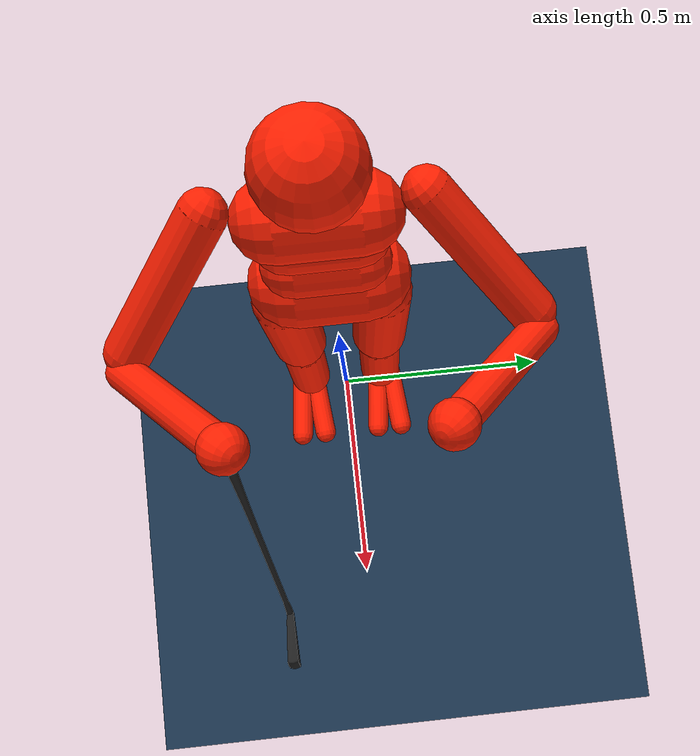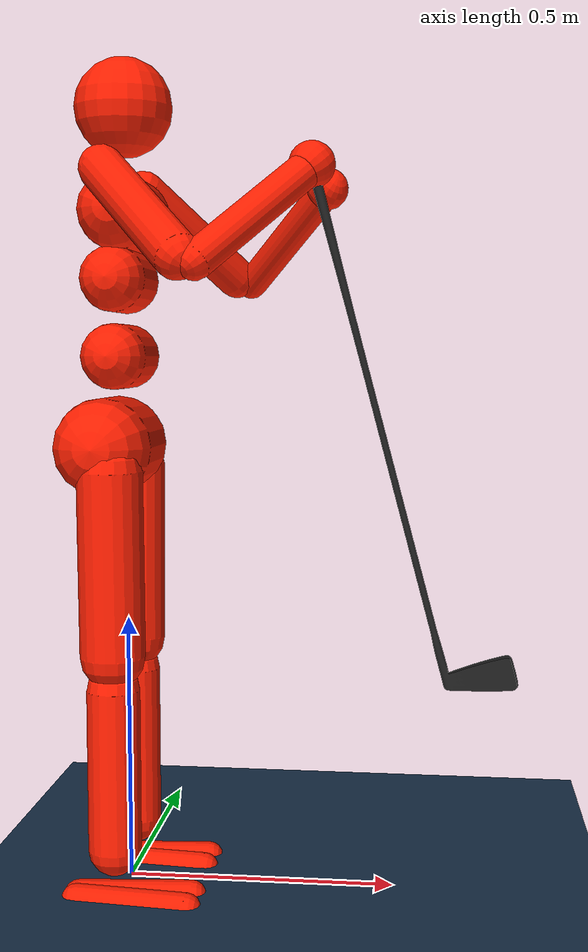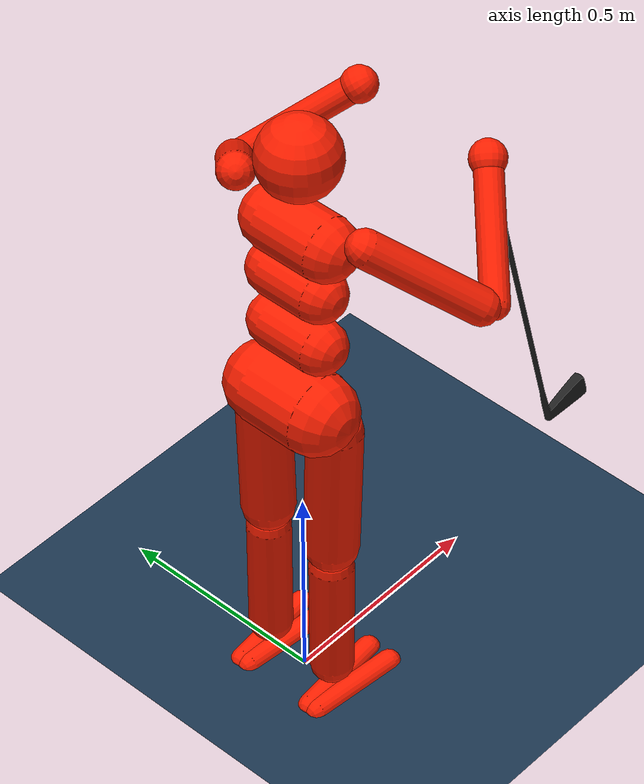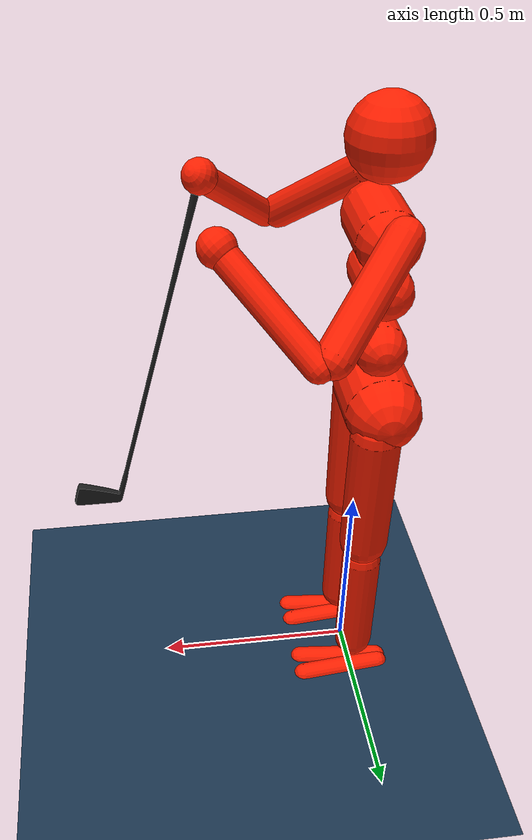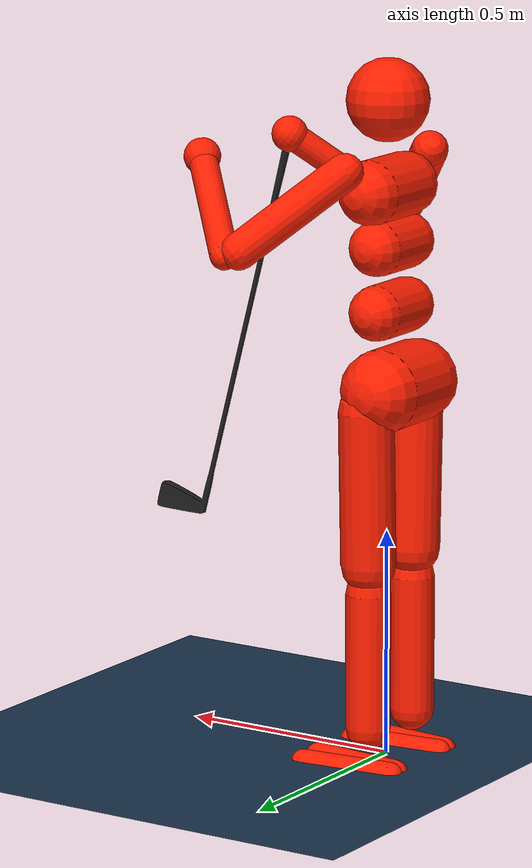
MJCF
<mujoco model="IEO Humanoid body">

  <option timestep="0.002" gravity="0 0 -9.81"/>

  <asset>
    <texture type="skybox" builtin="gradient" rgb1=".3 .5 .7" rgb2="0 0 0" width="512" height="512"/>
    <texture name="body" type="cube" builtin="flat" mark="cross" width="127" height="1278"
             rgb1="1 .35 .05" rgb2="1 .35 .05" markrgb="1 1 1" random="0.01"/>
    <material name="body" texture="body" texuniform="true" rgba="1 .35 .05 1"/>
    <material name="club" rgba="0.12 0.12 0.12 1"/>
    <material name="glass" rgba="0.1 0.2 0.3 0.8" reflectance="0.2"/>
    <mesh name="golf_club_mesh" file="golf_club.stl" scale="0.0085 0.0085 0.0085"/>
    <texture name="grid" type="2d" builtin="checker" width="512" height="512" rgb1=".1 .2 .3" rgb2=".2 .3 .4"/>
    <material name="grid" texture="grid" texrepeat="1 1" texuniform="true" reflectance=".2"/>
  </asset>

  <default>
    <motor ctrlrange="-1 1" ctrllimited="true"/>
    <default class="body">
      <geom type="capsule" condim="1" friction=".7" solimp=".9 .99 .003" solref=".015 1" material="body"/>
      <joint type="hinge" damping="15" stiffness="80" armature=".01" limited="true" solimplimit="0 .99 .01"/>
      <default class="big_joint">
        <joint damping="20" stiffness="100"/>
        <default class="big_stiff_joint">
          <joint damping="25" stiffness="140"/>
        </default>
      </default>
    </default>
  </default>

  <visual>
    <map force="0.1" zfar="30"/>
    <rgba haze="0.15 0.25 0.35 1"/>
    <quality shadowsize="4096"/>
    <global offwidth="800" offheight="800"/>
  </visual>

  <worldbody>

    <!-- CHÃO -->
    <geom name="floor" type="plane" size="5 5 0.1" material="glass" contype="1" conaffinity="1"/>

    <body name="torso" pos="0 0 1.25" childclass="body">
      <camera name="back" pos="-3 0 1" xyaxes="0 -1 0 1 0 2" mode="trackcom"/>
      <camera name="side" pos="0 -3 1" xyaxes="1 0 0 0 1 2" mode="trackcom"/>
      <freejoint name="root"/>
      <geom name="torso" fromto="0 -.07 0 0 .07 0" size=".07"/>
      <geom name="upper_waist" fromto="-.01 -.06 -.12 -.01 .06 -.12" size=".06"/>

      <!-- CABEÇA -->
      <body name="head" pos="0 0 .19">
        <geom name="head" type="sphere" size=".09"/>
        <camera name="egocentric" pos=".09 0 0" xyaxes="0 -1 0 .1 0 1" fovy="80"/>
      </body>

      <!-- CINTURA -->
      <body name="lower_waist" pos="-.01 0 -.26">
        <geom name="lower_waist" fromto="0 -.06 0 0 .06 0" size=".06"/>
        <joint name="abdomen_z" pos="0 0 .065" axis="0 0 1" range="-45 45" class="big_stiff_joint"/>
        <joint name="abdomen_y" pos="0 0 .065" axis="0 1 0" range="-75 30" class="big_joint"/>

        <!-- PELVE -->
        <body name="pelvis" pos="0 0 -.165">
          <joint name="abdomen_x" pos="0 0 .1" axis="1 0 0" range="-35 35" class="big_joint"/>
          <geom name="butt" fromto="-.02 -.07 0 -.02 .07 0" size=".09"/>

          <!-- PERNA DIREITA FIXA -->
          <body name="right_thigh" pos="0 -.1 -.04">
            <geom name="right_thigh" fromto="0 0 0 0 .01 -.34" size=".06"/>
            <body name="right_shin" pos="0 .01 -.403">
              <geom name="right_shin" fromto="0 0 0 0 0 -.3" size=".049"/>
              <body name="right_foot" pos="0 0 -.39">
                <geom name="right_right_foot" fromto="-.07 -.02 0 .14 -.04 0" size=".027"/>
                <geom name="left_right_foot" fromto="-.07 0 0 .14 .02 0" size=".027"/>
              </body>
            </body>
          </body>

          <!-- PERNA ESQUERDA FIXA -->
          <body name="left_thigh" pos="0 .1 -.04">
            <geom name="left_thigh" fromto="0 0 0 0 -.01 -.34" size=".06"/>
            <body name="left_shin" pos="0 -.01 -.403">
              <geom name="left_shin" fromto="0 0 0 0 0 -.3" size=".049"/>
              <body name="left_foot" pos="0 0 -.39">
                <geom name="left_left_foot" fromto="-.07 .02 0 .14 .04 0" size=".027"/>
                <geom name="right_left_foot" fromto="-.07 0 0 .14 -.02 0" size=".027"/>
              </body>
            </body>
          </body>
        </body>
      </body>

      <!-- BRAÇO DIREITO -->
      <body name="right_upper_arm" pos="0 -.17 .06">
        <joint name="right_shoulder1" axis="2 1 1" range="-85 60"/>
        <joint name="right_shoulder2" axis="0 -1 1" range="-85 60"/>
        <geom name="right_upper_arm" fromto="0 0 0 .16 -.16 -.16" size=".04 .16"/>
        <body name="right_lower_arm" pos=".18 -.18 -.18">
          <joint name="right_elbow" axis="1 0 0" range="-90 90" stiffness="0"/>
          <joint name="right_elbow_y" axis="0 1 0" range="-90 90" stiffness="0"/>
          <geom name="right_lower_arm" fromto=".01 .01 .01 .17 .17 .17" size=".031"/>
          <body name="right_hand" pos=".18 .18 .18">
            <!-- DOF DO PULSO: X E Y -->
            <joint name="right_wrist_x" axis="1 0 0" range="-45 45"/>
            <joint name="right_wrist_y" axis="0 1 0" range="-45 45"/>
            <geom name="right_hand" type="sphere" size=".04" zaxis="1 1 1"/>
            <!-- TACO DE GOLFE -->
            <geom
              name="golf_club"
              type="mesh"
              mesh="golf_club_mesh"
              material="club"
              pos="0.232 0 -0.889"
              contype="1"
              conaffinity="1"
            />
          </body>
        </body>
      </body>

      <!-- BRAÇO ESQUERDO -->
      <body name="left_upper_arm" pos="0 .17 .06">
        <joint name="left_shoulder1" axis="2 -1 1" range="-60 85"/>
        <joint name="left_shoulder2" axis="0 1 1" range="-60 85"/>
        <geom name="left_upper_arm" fromto="0 0 0 .16 .16 -.16" size=".04 .16"/>
        <body name="left_lower_arm" pos=".18 .18 -.18">
          <joint name="left_elbow" axis="1 0 0" range="-90 90" stiffness="0"/>
          <joint name="left_elbow_y" axis="0 1 0" range="-90 90" stiffness="0"/>
          <geom name="left_lower_arm" fromto=".01 -.01 .01 .17 -.17 .17" size=".031"/>
          <body name="left_hand" pos=".18 -.18 .18">
            <!-- DOF DO PULSO: X E Y -->
            <joint name="left_wrist_x" axis="1 0 0" range="-45 45"/>
            <joint name="left_wrist_y" axis="0 1 0" range="-45 45"/>
            <geom name="left_hand" type="sphere" size=".04" zaxis="1 -1 1"/>
          </body>
        </body>
      </body>
    </body>
  </worldbody>

  <actuator>
    <position name="abdomen_y_hold" joint="abdomen_y" kp="100"/>
    <position name="abdomen_z_hold" joint="abdomen_z" kp="100"/>
    <position name="abdomen_x_hold" joint="abdomen_x" kp="100"/>
    <position name="right_shoulder1_hold" joint="right_shoulder1" kp="60"/>
    <position name="right_shoulder2_hold" joint="right_shoulder2" kp="60"/>
    <position name="right_wrist_x_hold" joint="right_wrist_x" kp="40"/>
    <position name="right_wrist_y_hold" joint="right_wrist_y" kp="40"/>
    <position name="left_shoulder1_hold" joint="left_shoulder1" kp="60"/>
    <position name="left_shoulder2_hold" joint="left_shoulder2" kp="60"/>
    <position name="left_wrist_x_hold" joint="left_wrist_x" kp="40"/>
    <position name="left_wrist_y_hold" joint="left_wrist_y" kp="40"/>
  </actuator>

</mujoco>
